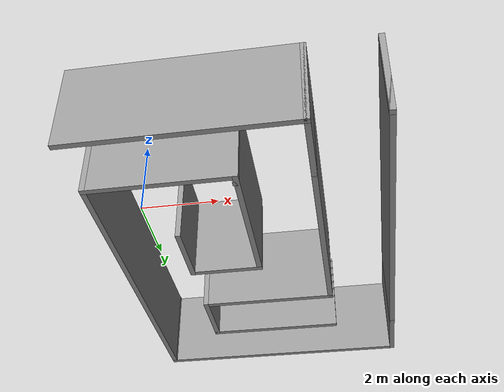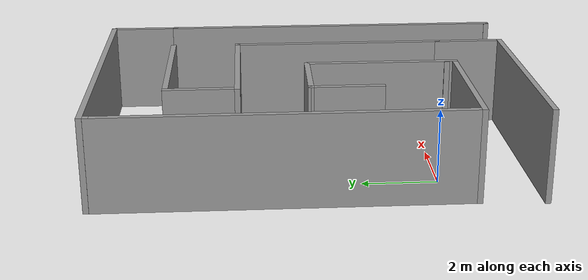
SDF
<?xml version='1.0'?>
<sdf version='1.7'>
  <model name='mapa2'>
    <pose>2.46955 3.19542 0 0 -0 0</pose>
    <link name='Wall_0'>
      <collision name='Wall_0_Collision'>
        <geometry>
          <box>
            <size>6 0.15 2.5</size>
          </box>
        </geometry>
        <pose>0 0 1.25 0 -0 0</pose>
      </collision>
      <visual name='Wall_0_Visual'>
        <pose>0 0 1.25 0 -0 0</pose>
        <geometry>
          <box>
            <size>6 0.15 2.5</size>
          </box>
        </geometry>
        <material>
          <script>
            <uri>file://media/materials/scripts/gazebo.material</uri>
            <name>Gazebo/Grey</name>
          </script>
          <ambient>1 1 1 1</ambient>
        </material>
        <meta>
          <layer>0</layer>
        </meta>
      </visual>
      <pose>-0.93 -5.725 0 0 -0 0</pose>
    </link>
    <link name='Wall_20'>
      <collision name='Wall_20_Collision'>
        <geometry>
          <box>
            <size>0.15 0.15 2.5</size>
          </box>
        </geometry>
        <pose>0 0 1.25 0 -0 0</pose>
      </collision>
      <visual name='Wall_20_Visual'>
        <pose>0 0 1.25 0 -0 0</pose>
        <geometry>
          <box>
            <size>0.15 0.15 2.5</size>
          </box>
        </geometry>
        <material>
          <script>
            <uri>file://media/materials/scripts/gazebo.material</uri>
            <name>Gazebo/Grey</name>
          </script>
          <ambient>1 1 1 1</ambient>
        </material>
        <meta>
          <layer>0</layer>
        </meta>
      </visual>
      <pose>0.069094 -3.79761 0 0 -0 0</pose>
    </link>
    <link name='Wall_27'>
      <collision name='Wall_27_Collision'>
        <geometry>
          <box>
            <size>2 0.15 2.5</size>
          </box>
        </geometry>
        <pose>0 0 1.25 0 -0 0</pose>
      </collision>
      <visual name='Wall_27_Visual'>
        <pose>0 0 1.25 0 -0 0</pose>
        <geometry>
          <box>
            <size>2 0.15 2.5</size>
          </box>
        </geometry>
        <material>
          <script>
            <uri>file://media/materials/scripts/gazebo.material</uri>
            <name>Gazebo/Grey</name>
          </script>
          <ambient>1 1 1 1</ambient>
        </material>
        <meta>
          <layer>0</layer>
        </meta>
      </visual>
      <pose>1.995 -4.8 0 0 -0 1.5708</pose>
    </link>
    <link name='Wall_30'>
      <collision name='Wall_30_Collision'>
        <geometry>
          <box>
            <size>2.10708 0.15 2.5</size>
          </box>
        </geometry>
        <pose>0 0 1.25 0 -0 0</pose>
      </collision>
      <visual name='Wall_30_Visual'>
        <pose>0 0 1.25 0 -0 0</pose>
        <geometry>
          <box>
            <size>2.10708 0.15 2.5</size>
          </box>
        </geometry>
        <material>
          <script>
            <uri>file://media/materials/scripts/gazebo.material</uri>
            <name>Gazebo/Grey</name>
          </script>
          <ambient>1 1 1 1</ambient>
        </material>
        <meta>
          <layer>0</layer>
        </meta>
      </visual>
      <pose>-0.877821 0.07755 0 0 -0 3.13768</pose>
    </link>
    <link name='Wall_31'>
      <collision name='Wall_31_Collision'>
        <geometry>
          <box>
            <size>2 0.15 2.5</size>
          </box>
        </geometry>
        <pose>0 0 1.25 0 -0 0</pose>
      </collision>
      <visual name='Wall_31_Visual'>
        <pose>0 0 1.25 0 -0 0</pose>
        <geometry>
          <box>
            <size>2 0.15 2.5</size>
          </box>
        </geometry>
        <material>
          <script>
            <uri>file://media/materials/scripts/gazebo.material</uri>
            <name>Gazebo/Grey</name>
          </script>
          <ambient>1 1 1 1</ambient>
        </material>
        <meta>
          <layer>0</layer>
        </meta>
      </visual>
      <pose>-1.85635 -0.843626 0 0 -0 -1.5708</pose>
    </link>
    <link name='Wall_33'>
      <collision name='Wall_33_Collision'>
        <geometry>
          <box>
            <size>6 0.15 2.5</size>
          </box>
        </geometry>
        <pose>0 0 1.25 0 -0 0</pose>
      </collision>
      <visual name='Wall_33_Visual'>
        <pose>0 0 1.25 0 -0 0</pose>
        <geometry>
          <box>
            <size>6 0.15 2.5</size>
          </box>
        </geometry>
        <material>
          <script>
            <uri>file://media/materials/scripts/gazebo.material</uri>
            <name>Gazebo/Grey</name>
          </script>
          <ambient>1 1 1 1</ambient>
        </material>
        <meta>
          <layer>0</layer>
        </meta>
      </visual>
      <pose>1.995 -0.95 0 0 -0 1.5708</pose>
    </link>
    <link name='Wall_34'>
      <collision name='Wall_34_Collision'>
        <geometry>
          <box>
            <size>4 0.15 2.5</size>
          </box>
        </geometry>
        <pose>0 0 1.25 0 -0 0</pose>
      </collision>
      <visual name='Wall_34_Visual'>
        <pose>0 0 1.25 0 -0 0</pose>
        <geometry>
          <box>
            <size>4 0.15 2.5</size>
          </box>
        </geometry>
        <material>
          <script>
            <uri>file://media/materials/scripts/gazebo.material</uri>
            <name>Gazebo/Grey</name>
          </script>
          <ambient>1 1 1 1</ambient>
        </material>
        <meta>
          <layer>0</layer>
        </meta>
      </visual>
      <pose>0.07 1.975 0 0 -0 3.14159</pose>
    </link>
    <link name='Wall_37'>
      <collision name='Wall_37_Collision'>
        <geometry>
          <box>
            <size>2 0.15 2.5</size>
          </box>
        </geometry>
        <pose>0 0 1.25 0 -0 0</pose>
      </collision>
      <visual name='Wall_37_Visual'>
        <pose>0 0 1.25 0 -0 0</pose>
        <geometry>
          <box>
            <size>2 0.15 2.5</size>
          </box>
        </geometry>
        <material>
          <script>
            <uri>file://media/materials/scripts/gazebo.material</uri>
            <name>Gazebo/Grey</name>
          </script>
          <ambient>1 1 1 1</ambient>
        </material>
        <meta>
          <layer>0</layer>
        </meta>
      </visual>
      <pose>-1.855 2.9 0 0 -0 1.5708</pose>
    </link>
    <link name='Wall_38'>
      <collision name='Wall_38_Collision'>
        <geometry>
          <box>
            <size>4 0.15 2.5</size>
          </box>
        </geometry>
        <pose>0 0 1.25 0 -0 0</pose>
      </collision>
      <visual name='Wall_38_Visual'>
        <pose>0 0 1.25 0 -0 0</pose>
        <geometry>
          <box>
            <size>4 0.15 2.5</size>
          </box>
        </geometry>
        <material>
          <script>
            <uri>file://media/materials/scripts/gazebo.material</uri>
            <name>Gazebo/Grey</name>
          </script>
          <ambient>1 1 1 1</ambient>
        </material>
        <meta>
          <layer>0</layer>
        </meta>
      </visual>
      <pose>0.07 3.825 0 0 -0 0</pose>
    </link>
    <link name='Wall_41'>
      <collision name='Wall_41_Collision'>
        <geometry>
          <box>
            <size>0.16 0.15 2.5</size>
          </box>
        </geometry>
        <pose>0 0 1.25 0 -0 0</pose>
      </collision>
      <visual name='Wall_41_Visual'>
        <pose>0 0 1.25 0 -0 0</pose>
        <geometry>
          <box>
            <size>0.16 0.15 2.5</size>
          </box>
        </geometry>
        <material>
          <script>
            <uri>file://media/materials/scripts/gazebo.material</uri>
            <name>Gazebo/Grey</name>
          </script>
          <ambient>1 1 1 1</ambient>
        </material>
        <meta>
          <layer>0</layer>
        </meta>
      </visual>
      <pose>3.85 -5.725 0 0 -0 0</pose>
    </link>
    <link name='Wall_42'>
      <collision name='Wall_42_Collision'>
        <geometry>
          <box>
            <size>9.75 0.15 2.5</size>
          </box>
        </geometry>
        <pose>0 0 1.25 0 -0 0</pose>
      </collision>
      <visual name='Wall_42_Visual'>
        <pose>0 0 1.25 0 -0 0</pose>
        <geometry>
          <box>
            <size>9.75 0.15 2.5</size>
          </box>
        </geometry>
        <material>
          <script>
            <uri>file://media/materials/scripts/gazebo.material</uri>
            <name>Gazebo/Grey</name>
          </script>
          <ambient>1 1 1 1</ambient>
        </material>
        <meta>
          <layer>0</layer>
        </meta>
      </visual>
      <pose>3.855 -0.925 0 0 -0 1.5708</pose>
    </link>
    <link name='Wall_46'>
      <collision name='Wall_46_Collision'>
        <geometry>
          <box>
            <size>2 0.15 2.5</size>
          </box>
        </geometry>
        <pose>0 0 1.25 0 -0 0</pose>
      </collision>
      <visual name='Wall_46_Visual'>
        <pose>0 0 1.25 0 -0 0</pose>
        <geometry>
          <box>
            <size>2 0.15 2.5</size>
          </box>
        </geometry>
        <material>
          <script>
            <uri>file://media/materials/scripts/gazebo.material</uri>
            <name>Gazebo/Grey</name>
          </script>
          <ambient>1 1 1 1</ambient>
        </material>
        <meta>
          <layer>0</layer>
        </meta>
      </visual>
      <pose>3.855 4.8 0 0 -0 1.5708</pose>
    </link>
    <link name='Wall_50'>
      <collision name='Wall_50_Collision'>
        <geometry>
          <box>
            <size>7.75 0.15 2.5</size>
          </box>
        </geometry>
        <pose>0 0 1.25 0 -0 0</pose>
      </collision>
      <visual name='Wall_50_Visual'>
        <pose>0 0 1.25 0 -0 0</pose>
        <geometry>
          <box>
            <size>7.75 0.15 2.5</size>
          </box>
        </geometry>
        <material>
          <script>
            <uri>file://media/materials/scripts/gazebo.material</uri>
            <name>Gazebo/Grey</name>
          </script>
          <ambient>1 1 1 1</ambient>
        </material>
        <meta>
          <layer>0</layer>
        </meta>
      </visual>
      <pose>0.055 5.725 0 0 -0 3.14159</pose>
    </link>
    <link name='Wall_53'>
      <collision name='Wall_53_Collision'>
        <geometry>
          <box>
            <size>4.25 0.15 2.5</size>
          </box>
        </geometry>
        <pose>0 0 1.25 0 -0 0</pose>
      </collision>
      <visual name='Wall_53_Visual'>
        <pose>0 0 1.25 0 -0 0</pose>
        <geometry>
          <box>
            <size>4.25 0.15 2.5</size>
          </box>
        </geometry>
        <material>
          <script>
            <uri>file://media/materials/scripts/gazebo.material</uri>
            <name>Gazebo/Grey</name>
          </script>
          <ambient>1 1 1 1</ambient>
        </material>
        <meta>
          <layer>0</layer>
        </meta>
      </visual>
      <pose>0.100712 -1.97627 0 0 -0 -1.5708</pose>
    </link>
    <link name='Wall_54'>
      <collision name='Wall_54_Collision'>
        <geometry>
          <box>
            <size>4 0.15 2.5</size>
          </box>
        </geometry>
        <pose>0 0 1.25 0 -0 0</pose>
      </collision>
      <visual name='Wall_54_Visual'>
        <pose>0 0 1.25 0 -0 0</pose>
        <geometry>
          <box>
            <size>4 0.15 2.5</size>
          </box>
        </geometry>
        <material>
          <script>
            <uri>file://media/materials/scripts/gazebo.material</uri>
            <name>Gazebo/Grey</name>
          </script>
          <ambient>1 1 1 1</ambient>
        </material>
        <meta>
          <layer>0</layer>
        </meta>
      </visual>
      <pose>-1.82429 -4.02627 0 0 -0 3.14159</pose>
    </link>
    <link name='Wall_55'>
      <collision name='Wall_55_Collision'>
        <geometry>
          <box>
            <size>9.75 0.15 2.5</size>
          </box>
        </geometry>
        <pose>0 0 1.25 0 -0 0</pose>
      </collision>
      <visual name='Wall_55_Visual'>
        <pose>0 0 1.25 0 -0 0</pose>
        <geometry>
          <box>
            <size>9.75 0.15 2.5</size>
          </box>
        </geometry>
        <material>
          <script>
            <uri>file://media/materials/scripts/gazebo.material</uri>
            <name>Gazebo/Grey</name>
          </script>
          <ambient>1 1 1 1</ambient>
        </material>
        <meta>
          <layer>0</layer>
        </meta>
      </visual>
      <pose>-3.74929 0.773726 0 0 -0 1.5708</pose>
    </link>
    <link name='Wall_56'>
      <collision name='Wall_56_Collision'>
        <geometry>
          <box>
            <size>0.16 0.15 2.5</size>
          </box>
        </geometry>
        <pose>0 0 1.25 0 -0 0</pose>
      </collision>
      <visual name='Wall_56_Visual'>
        <pose>0 0 1.25 0 -0 0</pose>
        <geometry>
          <box>
            <size>0.16 0.15 2.5</size>
          </box>
        </geometry>
        <material>
          <script>
            <uri>file://media/materials/scripts/gazebo.material</uri>
            <name>Gazebo/Grey</name>
          </script>
          <ambient>1 1 1 1</ambient>
        </material>
        <meta>
          <layer>0</layer>
        </meta>
      </visual>
      <pose>-3.74429 5.57373 0 0 -0 0</pose>
    </link>
    <static>1</static>
  </model>
</sdf>
